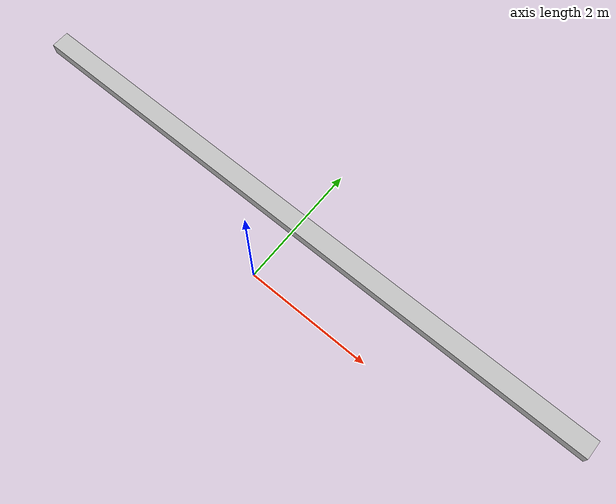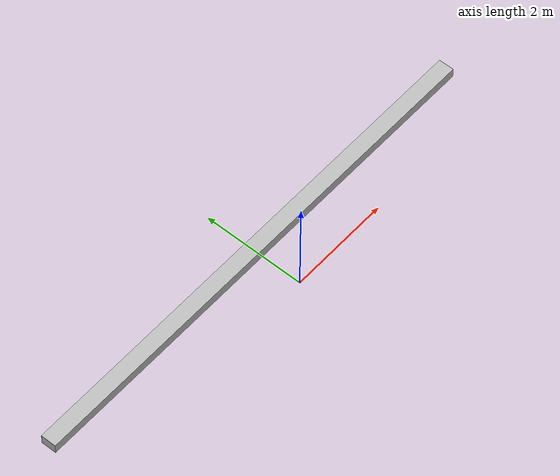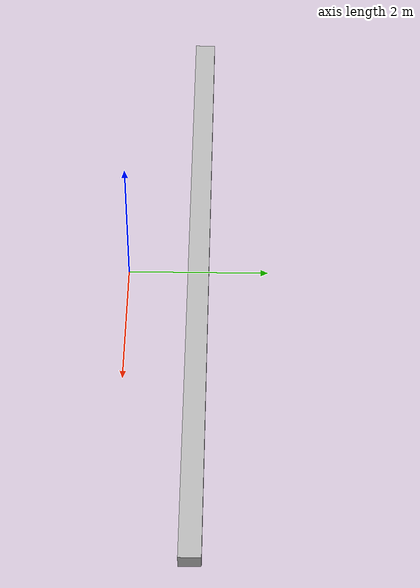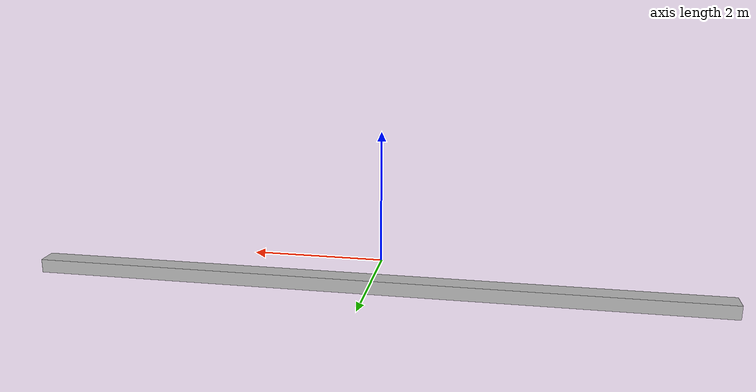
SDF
<?xml version="1.0" ?>

<sdf version="1.6">
  <world name="default">

    <include>
      <uri>model://sun</uri>
    </include>
    <!-- ground plane -->
    <model name="ground_plane">
      <static>true</static>
      <link name="link">
        <collision name="collision">
          <geometry>
            <plane>
              <normal>0 0 1</normal>
              <size>100 100</size>
            </plane>
          </geometry>
          <surface>
            <friction>
              <ode>
                <mu>100</mu>
                <mu2>50</mu2>
              </ode>
            </friction>
          </surface>
        </collision>
      </link>
    </model>

  <model name="simple_rail">
    <pose>0.0 1.0 0.0 0 0 1.57</pose>
    <static>true</static>
    <link name="link">
      <inertial>
        <mass>1.0</mass>
        <inertia> <!-- inertias are tricky to compute -->
          <!-- http://gazebosim.org/tutorials?tut=inertia&cat=build_robot -->
          <ixx>0.083</ixx>       <!-- for a box: ixx = 0.083 * mass * (y*y + z*z) -->
          <ixy>0.0</ixy>         <!-- for a box: ixy = 0 -->
          <ixz>0.0</ixz>         <!-- for a box: ixz = 0 -->
          <iyy>0.083</iyy>       <!-- for a box: iyy = 0.083 * mass * (x*x + z*z) -->
          <iyz>0.0</iyz>         <!-- for a box: iyz = 0 -->
          <izz>0.083</izz>       <!-- for a box: izz = 0.083 * mass * (x*x + y*y) -->
        </inertia>
      </inertial>
      <collision name="collision">
        <geometry>
          <box>
            <size>0.3 10 0.2</size>
          </box>
        </geometry>
      </collision>
      <visual name="visual">
        <geometry>
          <box>
            <size>0.3 10 0.2</size>
          </box>
        </geometry>
      </visual>
    </link>
  </model>

  </world>
</sdf>
